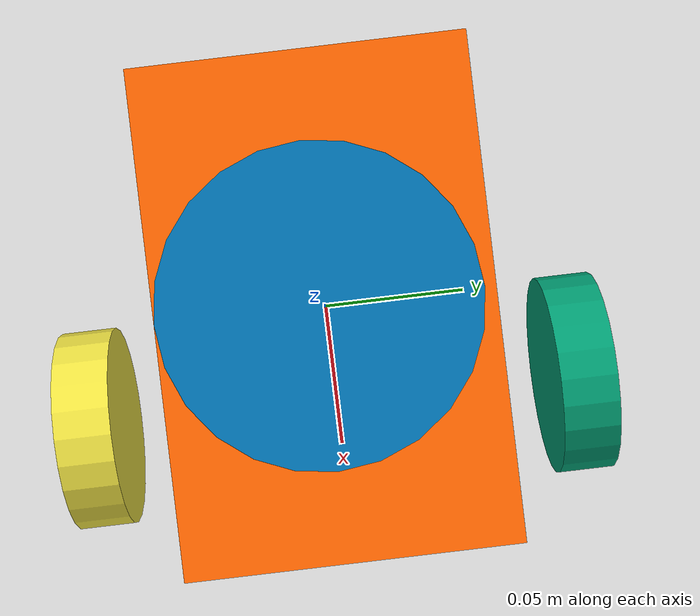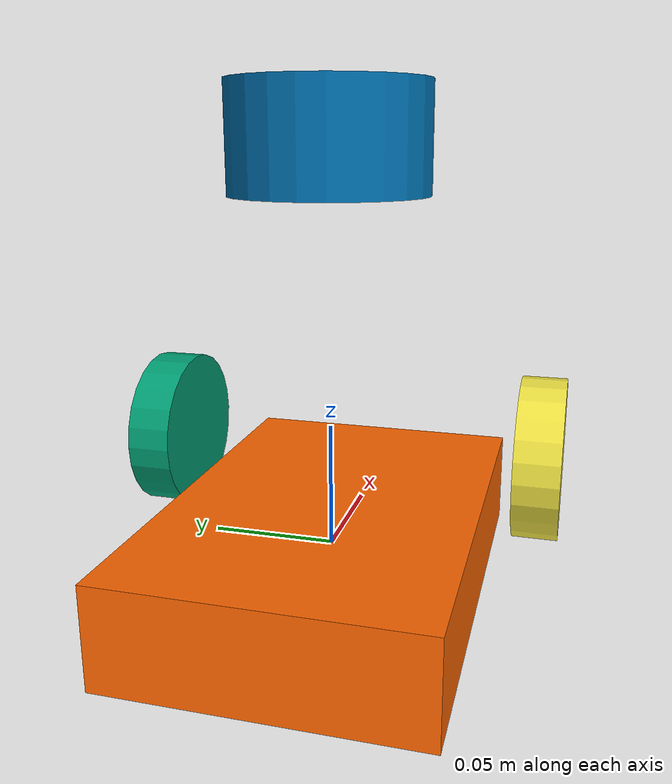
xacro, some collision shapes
<?xml version="1.0" ?>
<robot name="turtlebot3" xmlns:xacro="http://ros.org/wiki/xacro">

  <xacro:property name="M_PI" value="3.1415926535897931" />

  <material name="black">
    <color rgba="0.0 0.0 0.0 1.0"/>
  </material>
  <material name="orange">
    <color rgba="1.0 0.4 0.0 1.0"/>
  </material>

  <link name="base_footprint"/>

  <joint name="base_joint" type="fixed">
    <origin xyz="0 0 0" rpy="0 0 0"/>
    <parent link="base_footprint"/>
    <child link="base_link" />
  </joint>

  <link name="base_link">
    <visual>
      <origin xyz="0 0 0" rpy="0 0 0"/>
      <geometry>
        <mesh filename="package://turtlebot3_description/meshes/turtlebot3.stl" scale="0.001 0.001 0.001"/>
      </geometry>
      <material name="orange"/>
    </visual>
    <collision>
      <origin xyz="0 0 0" rpy="0 0 0"/>
      <geometry>
        <box size="0.18 0.12 0.04"/>
      </geometry>
    </collision>
    <inertial>
      <origin xyz="0 0 0" rpy="0 0 0"/>
      <mass value="1"/>
      <inertia ixx="0.01" ixy="0.0" ixz="0.0"
               iyy="0.01" iyz="0.0"
               izz="0.01" />
    </inertial>
  </link>

  <joint name="wheel_left_joint" type="continuous">
    <parent link="base_link"/>
    <child link="wheel_left_link"/>
    <origin xyz="0.032 0.08 0.033" rpy="-1.570796327 0 0"/>
    <axis xyz="0 0 1"/>
  </joint>

  <link name="wheel_left_link">
    <visual>
      <origin xyz="0 0 0" rpy="0 0 0"/>
      <geometry>
        <cylinder length="0.018" radius="0.033"/>
      </geometry>
    </visual>
    <collision>
      <origin rpy="0 0 0" xyz="0 0 0"/>
      <geometry>
        <cylinder length="0.018" radius="0.033"/>
      </geometry>
    </collision>
    <inertial>
      <origin xyz="0 0 0" />
      <mass value="0.01" />
      <inertia ixx="0.001" ixy="0.0" ixz="0.0"
               iyy="0.001" iyz="0.0"
               izz="0.001" />
    </inertial>
  </link>

  <joint name="wheel_right_joint" type="continuous">
    <parent link="base_link"/>
    <child link="wheel_right_link"/>
    <origin xyz="0.032 -0.08 0.033" rpy="-1.570796327 0 0"/>
    <axis xyz="0 0 1"/>
  </joint>

  <link name="wheel_right_link">
    <visual>
      <origin xyz="0 0 0" rpy="0 0 0"/>
      <geometry>
        <cylinder length="0.018" radius="0.033"/>
      </geometry>
    </visual>
    <collision>
      <origin rpy="0 0 0" xyz="0 0 0"/>
      <geometry>
        <cylinder length="0.018" radius="0.033"/>
      </geometry>
    </collision>
    <inertial>
      <origin xyz="0 0 0" />
      <mass value="0.01" />
      <inertia ixx="0.001" ixy="0.0" ixz="0.0"
               iyy="0.001" iyz="0.0"
               izz="0.001" />
    </inertial>
  </link>

  <joint name="scan_joint" type="fixed">
    <origin xyz="0 0 0.13925" rpy="0 0 0"/>
    <axis xyz="0 0 0"/>
    <parent link="base_link"/>
    <child link="base_scan"/>
  </joint>

  <link name="base_scan">
    <visual>
      <origin xyz="0 0 0.0204" rpy="0 0 0"/>
      <geometry>
        <cylinder length="0.0408" radius="0.03785"/>
      </geometry>
    </visual>
    <collision>
      <origin rpy="0 0 0" xyz="0 0 0"/>
      <geometry>
        <cylinder length="0.0408" radius="0.03785"/>
      </geometry>
    </collision>
    <inertial>
      <mass value="0.01" />
      <origin xyz="0 0 0" />
      <inertia ixx="0.001" ixy="0.0" ixz="0.0"
               iyy="0.001" iyz="0.0"
               izz="0.001" />
    </inertial>
  </link>

</robot>
